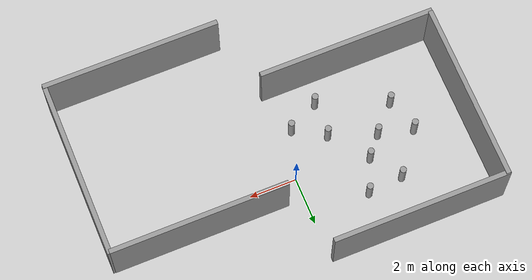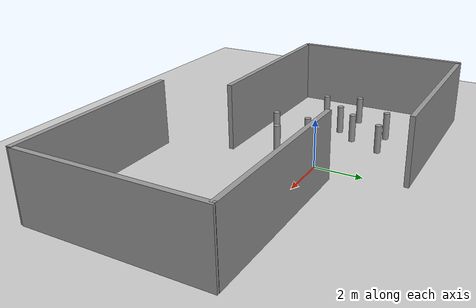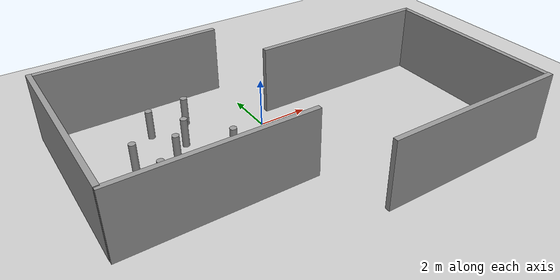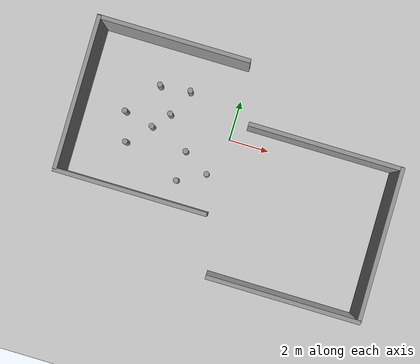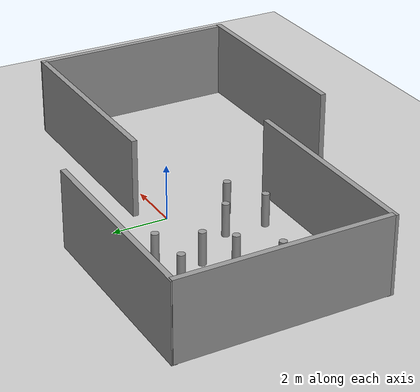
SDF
<sdf version="1.7">
 <world name="default">
  <light name="sun" type="directional">
   <pose>0 0 10 0 -0 0</pose>
   <diffuse>0.8 0.8 0.8 1</diffuse>
   <specular>0.2 0.2 0.2 1</specular>
   <attenuation>
    <range>1000</range>
    <constant>0.9</constant>
    <linear>0.01</linear>
    <quadratic>0.001</quadratic>
   </attenuation>
   <direction>-0.5 0.1 -0.9</direction>
   <spot><inner_angle>0</inner_angle><outer_angle>0</outer_angle><falloff>0</falloff></spot>
  </light>
  <model name="ground_plane">
   <static>1</static>
   <link name="link">
    <collision name="collision">
     <geometry><plane><normal>0 0 1</normal><size>100 100</size></plane></geometry>
     <surface>
      <contact><collide_bitmask>65535</collide_bitmask></contact>
      <friction><ode><mu>100</mu><mu2>50</mu2></ode></friction>
     </surface>
    </collision>
    <visual name="visual">
     <cast_shadows>0</cast_shadows>
     <geometry><plane><normal>0 0 1</normal><size>100 100</size></plane></geometry>
     <material>
      <script><uri>file://media/materials/scripts/gazebo.material</uri><name>Gazebo/Grey</name></script>
     </material>
    </visual>
   </link>
  </model>
  <gravity>0 0 -9.8</gravity>
  <magnetic_field>6e-06 2.3e-05 -4.2e-05</magnetic_field>
  <atmosphere type="adiabatic"/>
  <physics type="ode">
   <max_step_size>0.001</max_step_size>
   <real_time_factor>1</real_time_factor>
   <real_time_update_rate>1000</real_time_update_rate>
  </physics>
  <scene><ambient>0.4 0.4 0.4 1</ambient><background>0.7 0.7 0.7 1</background><shadows>1</shadows></scene>
  <spherical_coordinates>
   <surface_model>EARTH_WGS84</surface_model>
   <latitude_deg>0</latitude_deg>
   <longitude_deg>0</longitude_deg>
   <elevation>0</elevation>
   <heading_deg>0</heading_deg>
  </spherical_coordinates>
  <model name="grey_wall_clone">
   <static>1</static>
   <link name="link">
    <pose>0 0 1.4 0 -0 0</pose>
    <collision name="collision"><geometry><box><size>7.5 0.2 2.8</size></box></geometry></collision>
    <visual name="visual">
     <cast_shadows>0</cast_shadows>
     <geometry><box><size>7.5 0.2 2.8</size></box></geometry>
     <material>
      <script>
       <uri>model://grey_wall/materials/scripts</uri>
       <uri>model://grey_wall/materials/textures</uri>
       <name>vrc/grey_wall</name>
      </script>
     </material>
    </visual>
   </link>
   <pose>-3.80422 3.66587 0 0 -0 0</pose>
  </model>
  <model name="grey_wall_clone_0">
   <static>1</static>
   <link name="link">
    <pose>0 0 1.4 0 -0 0</pose>
    <collision name="collision"><geometry><box><size>7.5 0.2 2.8</size></box></geometry></collision>
    <visual name="visual">
     <cast_shadows>0</cast_shadows>
     <geometry><box><size>7.5 0.2 2.8</size></box></geometry>
     <material>
      <script>
       <uri>model://grey_wall/materials/scripts</uri>
       <uri>model://grey_wall/materials/textures</uri>
       <name>vrc/grey_wall</name>
      </script>
     </material>
    </visual>
   </link>
   <pose>-3.7264 -3.80114 0 0 -0 0</pose>
  </model>
  <model name="grey_wall_clone_clone">
   <static>1</static>
   <link name="link">
    <pose>0 0 1.4 0 -0 0</pose>
    <collision name="collision"><geometry><box><size>7.5 0.2 2.8</size></box></geometry></collision>
    <visual name="visual">
     <cast_shadows>0</cast_shadows>
     <geometry><box><size>7.5 0.2 2.8</size></box></geometry>
     <material>
      <script>
       <uri>model://grey_wall/materials/scripts</uri>
       <uri>model://grey_wall/materials/textures</uri>
       <name>vrc/grey_wall</name>
      </script>
     </material>
    </visual>
   </link>
   <pose>-7.43319 -0.022199 0.026341 0.001228 -0 1.58099</pose>
  </model>
  <model name="grey_wall">
   <static>1</static>
   <link name="link">
    <pose>0 0 1.4 0 -0 0</pose>
    <collision name="collision"><geometry><box><size>7.5 0.2 2.8</size></box></geometry></collision>
    <visual name="visual">
     <cast_shadows>0</cast_shadows>
     <geometry><box><size>7.5 0.2 2.8</size></box></geometry>
     <material>
      <script>
       <uri>model://grey_wall/materials/scripts</uri>
       <uri>model://grey_wall/materials/textures</uri>
       <name>vrc/grey_wall</name>
      </script>
     </material>
    </visual>
   </link>
   <pose>4.4311 0.82025 0 0 -0 0</pose>
  </model>
  <model name="grey_wall_clone_1_clone">
   <static>1</static>
   <link name="link">
    <pose>0 0 1.4 0 -0 0</pose>
    <collision name="collision"><geometry><box><size>7.5 0.2 2.8</size></box></geometry></collision>
    <visual name="visual">
     <cast_shadows>0</cast_shadows>
     <geometry><box><size>7.5 0.2 2.8</size></box></geometry>
     <material>
      <script>
       <uri>model://grey_wall/materials/scripts</uri>
       <uri>model://grey_wall/materials/textures</uri>
       <name>vrc/grey_wall</name>
      </script>
     </material>
    </visual>
   </link>
   <pose>8.18724 -2.8403 0 0 0 -1.56673</pose>
  </model>
  <model name="grey_wall_clone_1">
   <static>1</static>
   <link name="link">
    <pose>0 0 1.4 0 -0 0</pose>
    <collision name="collision"><geometry><box><size>7.5 0.2 2.8</size></box></geometry></collision>
    <visual name="visual">
     <cast_shadows>0</cast_shadows>
     <geometry><box><size>7.5 0.2 2.8</size></box></geometry>
     <material>
      <script>
       <uri>model://grey_wall/materials/scripts</uri>
       <uri>model://grey_wall/materials/textures</uri>
       <name>vrc/grey_wall</name>
      </script>
     </material>
    </visual>
   </link>
   <pose>4.53373 -6.57682 0.01885 0 -0 0</pose>
  </model>
  <model name="triangle_lattice">
   <model name="smaller_cylinder">
    <model name="smaller_cylinder_1">
     <link name="link">
      <inertial>
       <mass>0.0872829</mass>
       <inertia>
        <ixx>0.0108064</ixx>
        <ixy>0</ixy>
        <ixz>0</ixz>
        <iyy>0.0108064</iyy>
        <iyz>0</iyz>
        <izz>0.000796093</izz>
       </inertia>
      </inertial>
      <visual name="visual">
       <geometry><cylinder><radius>0.135062</radius><length>1.19624</length></cylinder></geometry>
       <material>
        <script><name>Gazebo/Grey</name><uri>file://media/materials/scripts/gazebo.material</uri></script>
        <shader type="pixel"/>
       </material>
      </visual>
      <collision name="collision">
       <geometry><cylinder><radius>0.135062</radius><length>1.19624</length></cylinder></geometry>
       <surface>
        <friction>
         <ode><mu>1</mu><mu2>1</mu2><fdir1>0 0 0</fdir1><slip1>0</slip1><slip2>0</slip2></ode>
         <torsional>
          <coefficient>1</coefficient>
          <patch_radius>0</patch_radius>
          <surface_radius>0</surface_radius>
          <use_patch_radius>1</use_patch_radius>
          <ode><slip>0</slip></ode>
         </torsional>
        </friction>
        <bounce><restitution_coefficient>0</restitution_coefficient><threshold>1e+06</threshold></bounce>
        <contact>
         <collide_without_contact>0</collide_without_contact>
         <collide_without_contact_bitmask>1</collide_without_contact_bitmask>
         <collide_bitmask>1</collide_bitmask>
         <ode>
          <soft_cfm>0</soft_cfm>
          <soft_erp>0.2</soft_erp>
          <kp>1e+13</kp>
          <kd>1</kd>
          <max_vel>0.01</max_vel>
          <min_depth>0</min_depth>
         </ode>
         <bullet>
          <split_impulse>1</split_impulse>
          <split_impulse_penetration_threshold>-0.01</split_impulse_penetration_threshold>
          <soft_cfm>0</soft_cfm>
          <soft_erp>0.2</soft_erp>
          <kp>1e+13</kp>
          <kd>1</kd>
         </bullet>
        </contact>
       </surface>
      </collision>
     </link>
     <static>0</static>
     <pose>0.044198 -0.101528 0 0 -0 0</pose>
    </model>
    <static>1</static>
    <allow_auto_disable>0</allow_auto_disable>
    <pose>-3.76148 0.681051 0 0 -0 0</pose>
   </model>
   <model name="smaller_cylinder_0">
    <model name="smaller_cylinder_1">
     <link name="link">
      <inertial>
       <mass>0.0872829</mass>
       <inertia>
        <ixx>0.0108064</ixx>
        <ixy>0</ixy>
        <ixz>0</ixz>
        <iyy>0.0108064</iyy>
        <iyz>0</iyz>
        <izz>0.000796093</izz>
       </inertia>
      </inertial>
      <visual name="visual">
       <geometry><cylinder><radius>0.135062</radius><length>1.19624</length></cylinder></geometry>
       <material>
        <script><name>Gazebo/Grey</name><uri>file://media/materials/scripts/gazebo.material</uri></script>
        <shader type="pixel"/>
       </material>
      </visual>
      <collision name="collision">
       <geometry><cylinder><radius>0.135062</radius><length>1.19624</length></cylinder></geometry>
       <surface>
        <friction>
         <ode><mu>1</mu><mu2>1</mu2><fdir1>0 0 0</fdir1><slip1>0</slip1><slip2>0</slip2></ode>
         <torsional>
          <coefficient>1</coefficient>
          <patch_radius>0</patch_radius>
          <surface_radius>0</surface_radius>
          <use_patch_radius>1</use_patch_radius>
          <ode><slip>0</slip></ode>
         </torsional>
        </friction>
        <bounce><restitution_coefficient>0</restitution_coefficient><threshold>1e+06</threshold></bounce>
        <contact>
         <collide_without_contact>0</collide_without_contact>
         <collide_without_contact_bitmask>1</collide_without_contact_bitmask>
         <collide_bitmask>1</collide_bitmask>
         <ode>
          <soft_cfm>0</soft_cfm>
          <soft_erp>0.2</soft_erp>
          <kp>1e+13</kp>
          <kd>1</kd>
          <max_vel>0.01</max_vel>
          <min_depth>0</min_depth>
         </ode>
         <bullet>
          <split_impulse>1</split_impulse>
          <split_impulse_penetration_threshold>-0.01</split_impulse_penetration_threshold>
          <soft_cfm>0</soft_cfm>
          <soft_erp>0.2</soft_erp>
          <kp>1e+13</kp>
          <kd>1</kd>
         </bullet>
        </contact>
       </surface>
      </collision>
     </link>
     <static>0</static>
     <pose>0.044198 -0.101528 0 0 -0 0</pose>
    </model>
    <static>1</static>
    <allow_auto_disable>0</allow_auto_disable>
    <pose>-2.72489 1.77147 0 0 -0 0</pose>
   </model>
   <model name="smaller_cylinder_1">
    <model name="smaller_cylinder_1">
     <link name="link">
      <inertial>
       <mass>0.0872829</mass>
       <inertia>
        <ixx>0.0108064</ixx>
        <ixy>0</ixy>
        <ixz>0</ixz>
        <iyy>0.0108064</iyy>
        <iyz>0</iyz>
        <izz>0.000796093</izz>
       </inertia>
      </inertial>
      <visual name="visual">
       <geometry><cylinder><radius>0.135062</radius><length>1.19624</length></cylinder></geometry>
       <material>
        <script><name>Gazebo/Grey</name><uri>file://media/materials/scripts/gazebo.material</uri></script>
        <shader type="pixel"/>
       </material>
      </visual>
      <collision name="collision">
       <geometry><cylinder><radius>0.135062</radius><length>1.19624</length></cylinder></geometry>
       <surface>
        <friction>
         <ode><mu>1</mu><mu2>1</mu2><fdir1>0 0 0</fdir1><slip1>0</slip1><slip2>0</slip2></ode>
         <torsional>
          <coefficient>1</coefficient>
          <patch_radius>0</patch_radius>
          <surface_radius>0</surface_radius>
          <use_patch_radius>1</use_patch_radius>
          <ode><slip>0</slip></ode>
         </torsional>
        </friction>
        <bounce><restitution_coefficient>0</restitution_coefficient><threshold>1e+06</threshold></bounce>
        <contact>
         <collide_without_contact>0</collide_without_contact>
         <collide_without_contact_bitmask>1</collide_without_contact_bitmask>
         <collide_bitmask>1</collide_bitmask>
         <ode>
          <soft_cfm>0</soft_cfm>
          <soft_erp>0.2</soft_erp>
          <kp>1e+13</kp>
          <kd>1</kd>
          <max_vel>0.01</max_vel>
          <min_depth>0</min_depth>
         </ode>
         <bullet>
          <split_impulse>1</split_impulse>
          <split_impulse_penetration_threshold>-0.01</split_impulse_penetration_threshold>
          <soft_cfm>0</soft_cfm>
          <soft_erp>0.2</soft_erp>
          <kp>1e+13</kp>
          <kd>1</kd>
         </bullet>
        </contact>
       </surface>
      </collision>
     </link>
     <static>0</static>
     <pose>0.044198 -0.101528 0 0 -0 0</pose>
    </model>
    <static>1</static>
    <allow_auto_disable>0</allow_auto_disable>
    <pose>-2.31989 0.319731 0 0 -0 0</pose>
   </model>
   <static>1</static>
   <pose>-1.87429 3.91038 0.598112 0 -0 1.38908</pose>
  </model>
  <model name="triangle_lattice_clone">
   <model name="smaller_cylinder">
    <model name="smaller_cylinder_1">
     <link name="link">
      <inertial>
       <mass>0.0872829</mass>
       <inertia>
        <ixx>0.0108064</ixx>
        <ixy>0</ixy>
        <ixz>0</ixz>
        <iyy>0.0108064</iyy>
        <iyz>0</iyz>
        <izz>0.000796093</izz>
       </inertia>
      </inertial>
      <visual name="visual">
       <geometry><cylinder><radius>0.135062</radius><length>1.19624</length></cylinder></geometry>
       <material>
        <script><name>Gazebo/Grey</name><uri>file://media/materials/scripts/gazebo.material</uri></script>
        <shader type="pixel"/>
       </material>
      </visual>
      <collision name="collision">
       <geometry><cylinder><radius>0.135062</radius><length>1.19624</length></cylinder></geometry>
       <surface>
        <friction>
         <ode><mu>1</mu><mu2>1</mu2><fdir1>0 0 0</fdir1><slip1>0</slip1><slip2>0</slip2></ode>
         <torsional>
          <coefficient>1</coefficient>
          <patch_radius>0</patch_radius>
          <surface_radius>0</surface_radius>
          <use_patch_radius>1</use_patch_radius>
          <ode><slip>0</slip></ode>
         </torsional>
        </friction>
        <bounce><restitution_coefficient>0</restitution_coefficient><threshold>1e+06</threshold></bounce>
        <contact>
         <collide_without_contact>0</collide_without_contact>
         <collide_without_contact_bitmask>1</collide_without_contact_bitmask>
         <collide_bitmask>1</collide_bitmask>
         <ode>
          <soft_cfm>0</soft_cfm>
          <soft_erp>0.2</soft_erp>
          <kp>1e+13</kp>
          <kd>1</kd>
          <max_vel>0.01</max_vel>
          <min_depth>0</min_depth>
         </ode>
         <bullet>
          <split_impulse>1</split_impulse>
          <split_impulse_penetration_threshold>-0.01</split_impulse_penetration_threshold>
          <soft_cfm>0</soft_cfm>
          <soft_erp>0.2</soft_erp>
          <kp>1e+13</kp>
          <kd>1</kd>
         </bullet>
        </contact>
       </surface>
      </collision>
     </link>
     <static>0</static>
     <pose>0.044198 -0.101528 0 0 -0 0</pose>
    </model>
    <static>1</static>
    <allow_auto_disable>0</allow_auto_disable>
    <pose>-3.76148 0.681051 0 0 -0 0</pose>
   </model>
   <model name="smaller_cylinder_0">
    <model name="smaller_cylinder_1">
     <link name="link">
      <inertial>
       <mass>0.0872829</mass>
       <inertia>
        <ixx>0.0108064</ixx>
        <ixy>0</ixy>
        <ixz>0</ixz>
        <iyy>0.0108064</iyy>
        <iyz>0</iyz>
        <izz>0.000796093</izz>
       </inertia>
      </inertial>
      <visual name="visual">
       <geometry><cylinder><radius>0.135062</radius><length>1.19624</length></cylinder></geometry>
       <material>
        <script><name>Gazebo/Grey</name><uri>file://media/materials/scripts/gazebo.material</uri></script>
        <shader type="pixel"/>
       </material>
      </visual>
      <collision name="collision">
       <geometry><cylinder><radius>0.135062</radius><length>1.19624</length></cylinder></geometry>
       <surface>
        <friction>
         <ode><mu>1</mu><mu2>1</mu2><fdir1>0 0 0</fdir1><slip1>0</slip1><slip2>0</slip2></ode>
         <torsional>
          <coefficient>1</coefficient>
          <patch_radius>0</patch_radius>
          <surface_radius>0</surface_radius>
          <use_patch_radius>1</use_patch_radius>
          <ode><slip>0</slip></ode>
         </torsional>
        </friction>
        <bounce><restitution_coefficient>0</restitution_coefficient><threshold>1e+06</threshold></bounce>
        <contact>
         <collide_without_contact>0</collide_without_contact>
         <collide_without_contact_bitmask>1</collide_without_contact_bitmask>
         <collide_bitmask>1</collide_bitmask>
         <ode>
          <soft_cfm>0</soft_cfm>
          <soft_erp>0.2</soft_erp>
          <kp>1e+13</kp>
          <kd>1</kd>
          <max_vel>0.01</max_vel>
          <min_depth>0</min_depth>
         </ode>
         <bullet>
          <split_impulse>1</split_impulse>
          <split_impulse_penetration_threshold>-0.01</split_impulse_penetration_threshold>
          <soft_cfm>0</soft_cfm>
          <soft_erp>0.2</soft_erp>
          <kp>1e+13</kp>
          <kd>1</kd>
         </bullet>
        </contact>
       </surface>
      </collision>
     </link>
     <static>0</static>
     <pose>0.044198 -0.101528 0 0 -0 0</pose>
    </model>
    <static>1</static>
    <allow_auto_disable>0</allow_auto_disable>
    <pose>-2.72489 1.77147 0 0 -0 0</pose>
   </model>
   <model name="smaller_cylinder_1">
    <model name="smaller_cylinder_1">
     <link name="link">
      <inertial>
       <mass>0.0872829</mass>
       <inertia>
        <ixx>0.0108064</ixx>
        <ixy>0</ixy>
        <ixz>0</ixz>
        <iyy>0.0108064</iyy>
        <iyz>0</iyz>
        <izz>0.000796093</izz>
       </inertia>
      </inertial>
      <visual name="visual">
       <geometry><cylinder><radius>0.135062</radius><length>1.19624</length></cylinder></geometry>
       <material>
        <script><name>Gazebo/Grey</name><uri>file://media/materials/scripts/gazebo.material</uri></script>
        <shader type="pixel"/>
       </material>
      </visual>
      <collision name="collision">
       <geometry><cylinder><radius>0.135062</radius><length>1.19624</length></cylinder></geometry>
       <surface>
        <friction>
         <ode><mu>1</mu><mu2>1</mu2><fdir1>0 0 0</fdir1><slip1>0</slip1><slip2>0</slip2></ode>
         <torsional>
          <coefficient>1</coefficient>
          <patch_radius>0</patch_radius>
          <surface_radius>0</surface_radius>
          <use_patch_radius>1</use_patch_radius>
          <ode><slip>0</slip></ode>
         </torsional>
        </friction>
        <bounce><restitution_coefficient>0</restitution_coefficient><threshold>1e+06</threshold></bounce>
        <contact>
         <collide_without_contact>0</collide_without_contact>
         <collide_without_contact_bitmask>1</collide_without_contact_bitmask>
         <collide_bitmask>1</collide_bitmask>
         <ode>
          <soft_cfm>0</soft_cfm>
          <soft_erp>0.2</soft_erp>
          <kp>1e+13</kp>
          <kd>1</kd>
          <max_vel>0.01</max_vel>
          <min_depth>0</min_depth>
         </ode>
         <bullet>
          <split_impulse>1</split_impulse>
          <split_impulse_penetration_threshold>-0.01</split_impulse_penetration_threshold>
          <soft_cfm>0</soft_cfm>
          <soft_erp>0.2</soft_erp>
          <kp>1e+13</kp>
          <kd>1</kd>
         </bullet>
        </contact>
       </surface>
      </collision>
     </link>
     <static>0</static>
     <pose>0.044198 -0.101528 0 0 -0 0</pose>
    </model>
    <static>1</static>
    <allow_auto_disable>0</allow_auto_disable>
    <pose>-2.31989 0.319731 0 0 -0 0</pose>
   </model>
   <static>1</static>
   <pose>-1.6358 -4.93338 0.598112 0 -0 -1.35082</pose>
  </model>
  <model name="triangle_lattice_clone_1">
   <model name="smaller_cylinder">
    <model name="smaller_cylinder_1">
     <link name="link">
      <inertial>
       <mass>0.0872829</mass>
       <inertia>
        <ixx>0.0108064</ixx>
        <ixy>0</ixy>
        <ixz>0</ixz>
        <iyy>0.0108064</iyy>
        <iyz>0</iyz>
        <izz>0.000796093</izz>
       </inertia>
      </inertial>
      <visual name="visual">
       <geometry><cylinder><radius>0.135062</radius><length>1.19624</length></cylinder></geometry>
       <material>
        <script><name>Gazebo/Grey</name><uri>file://media/materials/scripts/gazebo.material</uri></script>
        <shader type="pixel"/>
       </material>
      </visual>
      <collision name="collision">
       <geometry><cylinder><radius>0.135062</radius><length>1.19624</length></cylinder></geometry>
       <surface>
        <friction>
         <ode><mu>1</mu><mu2>1</mu2><fdir1>0 0 0</fdir1><slip1>0</slip1><slip2>0</slip2></ode>
         <torsional>
          <coefficient>1</coefficient>
          <patch_radius>0</patch_radius>
          <surface_radius>0</surface_radius>
          <use_patch_radius>1</use_patch_radius>
          <ode><slip>0</slip></ode>
         </torsional>
        </friction>
        <bounce><restitution_coefficient>0</restitution_coefficient><threshold>1e+06</threshold></bounce>
        <contact>
         <collide_without_contact>0</collide_without_contact>
         <collide_without_contact_bitmask>1</collide_without_contact_bitmask>
         <collide_bitmask>1</collide_bitmask>
         <ode>
          <soft_cfm>0</soft_cfm>
          <soft_erp>0.2</soft_erp>
          <kp>1e+13</kp>
          <kd>1</kd>
          <max_vel>0.01</max_vel>
          <min_depth>0</min_depth>
         </ode>
         <bullet>
          <split_impulse>1</split_impulse>
          <split_impulse_penetration_threshold>-0.01</split_impulse_penetration_threshold>
          <soft_cfm>0</soft_cfm>
          <soft_erp>0.2</soft_erp>
          <kp>1e+13</kp>
          <kd>1</kd>
         </bullet>
        </contact>
       </surface>
      </collision>
     </link>
     <static>0</static>
     <pose>0.044198 -0.101528 0 0 -0 0</pose>
    </model>
    <static>1</static>
    <allow_auto_disable>0</allow_auto_disable>
    <pose>-3.76148 0.681051 0 0 -0 0</pose>
   </model>
   <model name="smaller_cylinder_0">
    <model name="smaller_cylinder_1">
     <link name="link">
      <inertial>
       <mass>0.0872829</mass>
       <inertia>
        <ixx>0.0108064</ixx>
        <ixy>0</ixy>
        <ixz>0</ixz>
        <iyy>0.0108064</iyy>
        <iyz>0</iyz>
        <izz>0.000796093</izz>
       </inertia>
      </inertial>
      <visual name="visual">
       <geometry><cylinder><radius>0.135062</radius><length>1.19624</length></cylinder></geometry>
       <material>
        <script><name>Gazebo/Grey</name><uri>file://media/materials/scripts/gazebo.material</uri></script>
        <shader type="pixel"/>
       </material>
      </visual>
      <collision name="collision">
       <geometry><cylinder><radius>0.135062</radius><length>1.19624</length></cylinder></geometry>
       <surface>
        <friction>
         <ode><mu>1</mu><mu2>1</mu2><fdir1>0 0 0</fdir1><slip1>0</slip1><slip2>0</slip2></ode>
         <torsional>
          <coefficient>1</coefficient>
          <patch_radius>0</patch_radius>
          <surface_radius>0</surface_radius>
          <use_patch_radius>1</use_patch_radius>
          <ode><slip>0</slip></ode>
         </torsional>
        </friction>
        <bounce><restitution_coefficient>0</restitution_coefficient><threshold>1e+06</threshold></bounce>
        <contact>
         <collide_without_contact>0</collide_without_contact>
         <collide_without_contact_bitmask>1</collide_without_contact_bitmask>
         <collide_bitmask>1</collide_bitmask>
         <ode>
          <soft_cfm>0</soft_cfm>
          <soft_erp>0.2</soft_erp>
          <kp>1e+13</kp>
          <kd>1</kd>
          <max_vel>0.01</max_vel>
          <min_depth>0</min_depth>
         </ode>
         <bullet>
          <split_impulse>1</split_impulse>
          <split_impulse_penetration_threshold>-0.01</split_impulse_penetration_threshold>
          <soft_cfm>0</soft_cfm>
          <soft_erp>0.2</soft_erp>
          <kp>1e+13</kp>
          <kd>1</kd>
         </bullet>
        </contact>
       </surface>
      </collision>
     </link>
     <static>0</static>
     <pose>0.044198 -0.101528 0 0 -0 0</pose>
    </model>
    <static>1</static>
    <allow_auto_disable>0</allow_auto_disable>
    <pose>-2.72489 1.77147 0 0 -0 0</pose>
   </model>
   <model name="smaller_cylinder_1">
    <model name="smaller_cylinder_1">
     <link name="link">
      <inertial>
       <mass>0.0872829</mass>
       <inertia>
        <ixx>0.0108064</ixx>
        <ixy>0</ixy>
        <ixz>0</ixz>
        <iyy>0.0108064</iyy>
        <iyz>0</iyz>
        <izz>0.000796093</izz>
       </inertia>
      </inertial>
      <visual name="visual">
       <geometry><cylinder><radius>0.135062</radius><length>1.19624</length></cylinder></geometry>
       <material>
        <script><name>Gazebo/Grey</name><uri>file://media/materials/scripts/gazebo.material</uri></script>
        <shader type="pixel"/>
       </material>
      </visual>
      <collision name="collision">
       <geometry><cylinder><radius>0.135062</radius><length>1.19624</length></cylinder></geometry>
       <surface>
        <friction>
         <ode><mu>1</mu><mu2>1</mu2><fdir1>0 0 0</fdir1><slip1>0</slip1><slip2>0</slip2></ode>
         <torsional>
          <coefficient>1</coefficient>
          <patch_radius>0</patch_radius>
          <surface_radius>0</surface_radius>
          <use_patch_radius>1</use_patch_radius>
          <ode><slip>0</slip></ode>
         </torsional>
        </friction>
        <bounce><restitution_coefficient>0</restitution_coefficient><threshold>1e+06</threshold></bounce>
        <contact>
         <collide_without_contact>0</collide_without_contact>
         <collide_without_contact_bitmask>1</collide_without_contact_bitmask>
         <collide_bitmask>1</collide_bitmask>
         <ode>
          <soft_cfm>0</soft_cfm>
          <soft_erp>0.2</soft_erp>
          <kp>1e+13</kp>
          <kd>1</kd>
          <max_vel>0.01</max_vel>
          <min_depth>0</min_depth>
         </ode>
         <bullet>
          <split_impulse>1</split_impulse>
          <split_impulse_penetration_threshold>-0.01</split_impulse_penetration_threshold>
          <soft_cfm>0</soft_cfm>
          <soft_erp>0.2</soft_erp>
          <kp>1e+13</kp>
          <kd>1</kd>
         </bullet>
        </contact>
       </surface>
      </collision>
     </link>
     <static>0</static>
     <pose>0.044198 -0.101528 0 0 -0 0</pose>
    </model>
    <static>1</static>
    <allow_auto_disable>0</allow_auto_disable>
    <pose>-2.31989 0.319731 0 0 -0 0</pose>
   </model>
   <static>1</static>
   <pose>-2.51132 1.41129 0.598119 0 -0 1.06291</pose>
  </model>
 </world>
</sdf>
